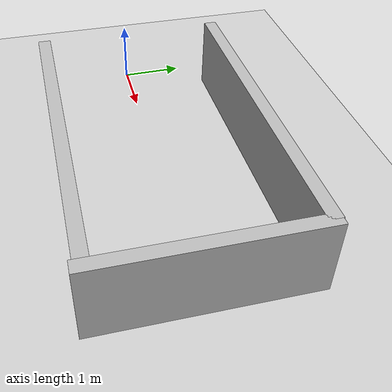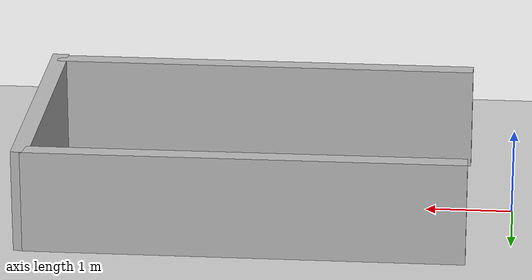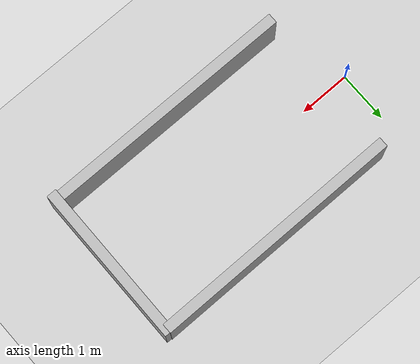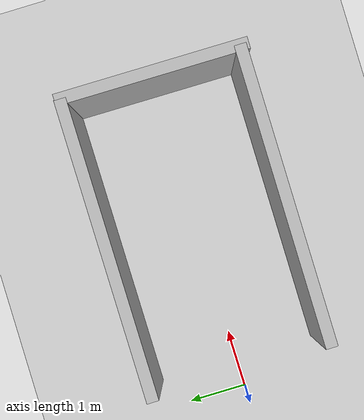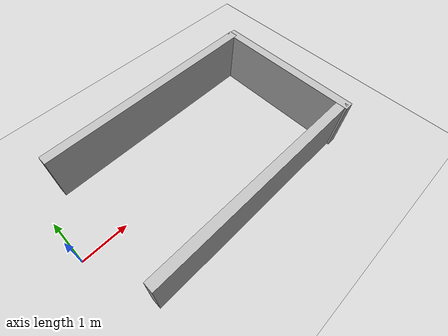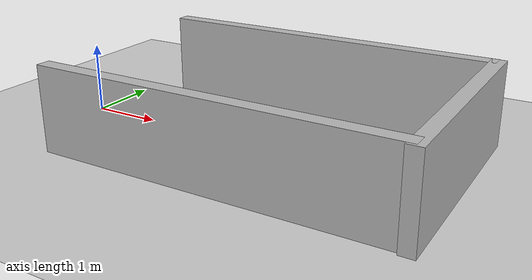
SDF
<?xml version="1.0"?>
<sdf version="1.6">
  <world name="v2-04g-r1-maneuver-s4934">
    <gravity>0 0 -9.81</gravity>
    <physics name="v2_deterministic" type="ode">
      <max_step_size>0.002</max_step_size>
      <real_time_update_rate>500</real_time_update_rate>
    </physics>
    <include>
      <uri>model://sun</uri>
    </include>
    <include>
      <uri>model://ground_plane</uri>
    </include>
    <model name="bay-left">
      <static>true</static>
      <pose>3.007080116 1.481297055 0.600000000 0 0 0.004342762</pose>
      <link name="link">
        <collision name="collision">
          <geometry>
            <box>
              <size>5.000000 0.200000 1.200000</size>
            </box>
          </geometry>
        </collision>
        <visual name="visual">
          <geometry>
            <box>
              <size>5.000000 0.200000 1.200000</size>
            </box>
          </geometry>
        </visual>
      </link>
    </model>
    <model name="bay-right">
      <static>true</static>
      <pose>3.010190657 -1.480488424 0.600000000 0 0 -0.000001088</pose>
      <link name="link">
        <collision name="collision">
          <geometry>
            <box>
              <size>5.000000 0.200000 1.200000</size>
            </box>
          </geometry>
        </collision>
        <visual name="visual">
          <geometry>
            <box>
              <size>5.000000 0.200000 1.200000</size>
            </box>
          </geometry>
        </visual>
      </link>
    </model>
    <model name="bay-back">
      <static>true</static>
      <pose>5.502788571 -0.020570795 0.600000000 0 0 -0.004294090</pose>
      <link name="link">
        <collision name="collision">
          <geometry>
            <box>
              <size>0.200000 3.200000 1.200000</size>
            </box>
          </geometry>
        </collision>
        <visual name="visual">
          <geometry>
            <box>
              <size>0.200000 3.200000 1.200000</size>
            </box>
          </geometry>
        </visual>
      </link>
    </model>
  </world>
</sdf>
